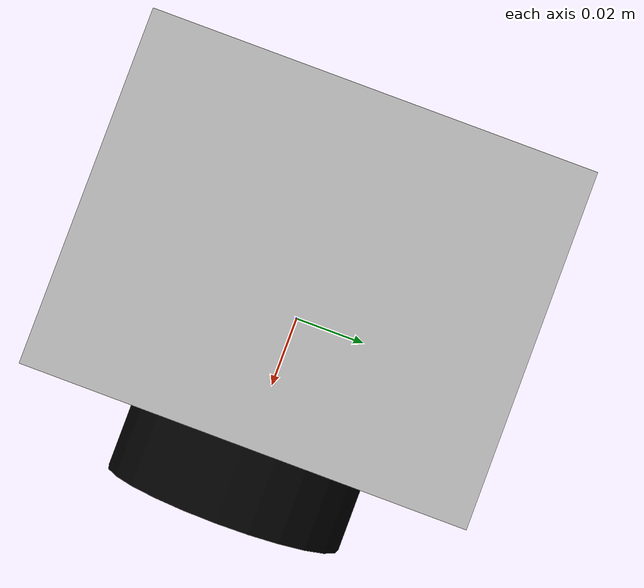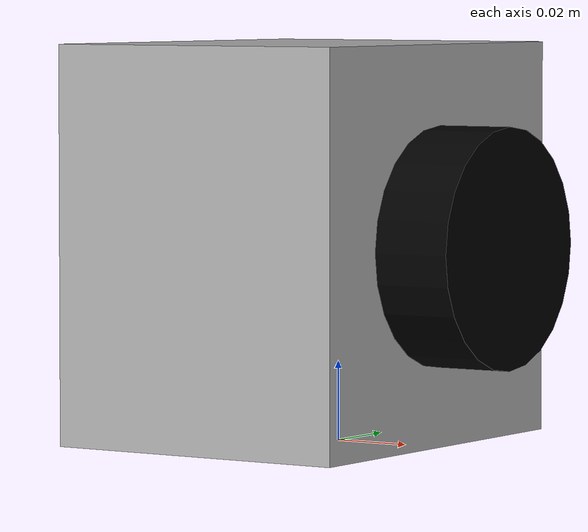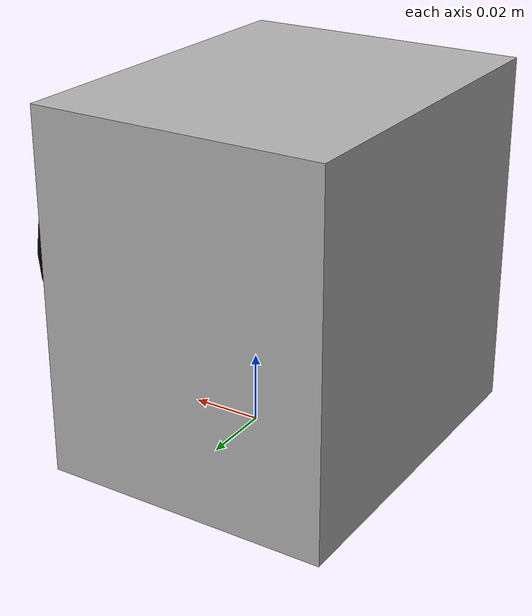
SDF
<?xml version="1.0" ?>
<sdf version="1.5">
  <model name="camera_ros">
    <!-- The origin is the center of the bottom -->
    <pose>0 0 0.05 0 0 0</pose>
    <link name="camera_link">
      <audio_sink /> <!-- Camera and microphone should be combined -->
      <pose>0 0 0 0 0 0</pose>
      <inertial>
        <mass>0.1</mass>
        <inertia>
          <ixx>0.000166667</ixx>
          <iyy>0.000166667</iyy>
          <izz>0.000166667</izz>
        </inertia>
      </inertial>
      <collision name="collision-box">
        <pose>-0.01 0 0 0 0 0</pose>
        <geometry>
          <box>
            <size>0.08 0.1 0.1</size>
          </box>
        </geometry>
      </collision>
      <collision name="collision-lens">
        <pose>0.04 0 0 0 1.57 0</pose>
        <geometry>
          <cylinder>
            <radius>0.03</radius>
            <length>0.02</length>
          </cylinder>
        </geometry>
      </collision>
      <visual name="visual-box">
        <pose>-0.01 0 0 0 0 0</pose>
        <geometry>
          <box>
            <size>0.08 0.1 0.1</size>
          </box>
        </geometry>
        <material>
          <ambient>0.3 0.3 0.3 1</ambient>
          <diffuse>0.7 0.7 0.7 1</diffuse>
          <specular>0.1 0.1 0.1 1</specular>
          <emissive>0 0 0 0</emissive>
        </material>
      </visual>
      <visual name="visual-lens">
        <pose>0.04 0 0 0 1.57 0</pose>
        <geometry>
          <cylinder>
            <radius>0.03</radius>
            <length>0.02</length>
          </cylinder>
        </geometry>
        <material>
          <ambient>0 0 0 1</ambient>
          <diffuse>0 0 0 1</diffuse>
          <specular>0.1 0.1 0.1 1</specular>
          <emissive>0 0 0 0</emissive>
        </material>
      </visual>
<!-- RGB CAMERA -->
      <sensor type="camera" name="camera">
        <update_rate>20</update_rate>
        <visualize>false</visualize>
        <camera name="camera">
          <horizontal_fov>1.047</horizontal_fov>
          <image>
            <width>320</width>
            <height>240</height>
            <format>R8G8B8</format>
          </image>
          <clip>
            <near>0.1</near>
            <far>100</far>
          </clip>
          <!-- Noise is sampled independently per pixel on each frame.
               That pixel's noise value is added to each of its color
               channels, which at that point lie in the range [0,1]. -->
          <noise>
            <type>gaussian</type>
            <mean>0.0</mean>
            <stddev>0.007</stddev>
          </noise>
        </camera>
        <plugin name="camera_controller" filename="libgazebo_ros_camera.so">
          <robotNamespace>robot2</robotNamespace>
          <alwaysOn>true</alwaysOn>
          <updateRate>0.0</updateRate>
          <cameraName>camera/rgb</cameraName>
          <imageTopicName>image_raw</imageTopicName>
          <cameraInfoTopicName>camera_info</cameraInfoTopicName>
          <frameName>camera_link</frameName>
          <hackBaseline>0.07</hackBaseline>
          <distortionK1>0.0</distortionK1>
          <distortionK2>0.0</distortionK2>
          <distortionK3>0.0</distortionK3>
          <distortionT1>0.0</distortionT1>
          <distortionT2>0.0</distortionT2>
        </plugin>
      </sensor>
<!-- THERMAL CAMERA -->
      <sensor type="camera" name="thermal_camera_sensor">
        <update_rate>10</update_rate>
        <camera name="camera_ros_thermal">
          <horizontal_fov>1.047</horizontal_fov>
          <image>
            <width>160</width>
            <height>120</height>
            <format>R8G8B8</format>
          </image>
          <clip>
            <near>0.1</near>
            <far>100</far>
          </clip>
        </camera>
        <plugin name="thermal_camera_controller"
                filename="libgazebo_ros_thermal_camera_pink.so">
          <robotNamespace>robot2</robotNamespace>
          <alwaysOn>true</alwaysOn>
          <updateRate>10</updateRate>
          <imageTopicName>camera/thermal/image_raw</imageTopicName>
          <cameraInfoTopicName>camera/thermal/camera_info</cameraInfoTopicName>
          <frameName>camera_link</frameName>
          <interface:camera name="thermal_camera_iface" />
        </plugin>
      </sensor>
    </link>
  </model>
</sdf>
